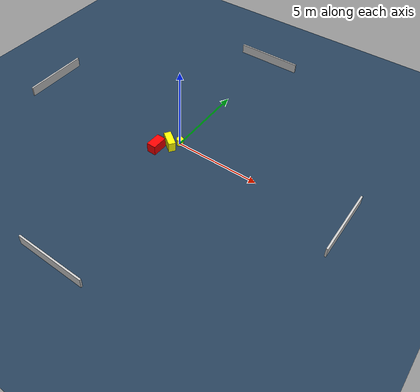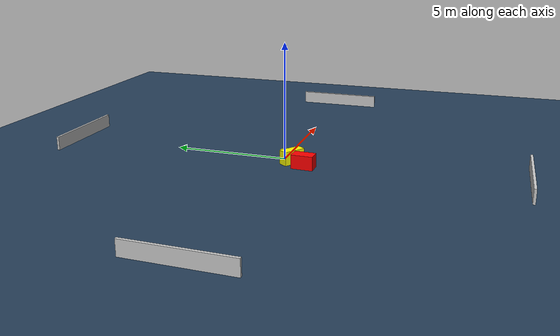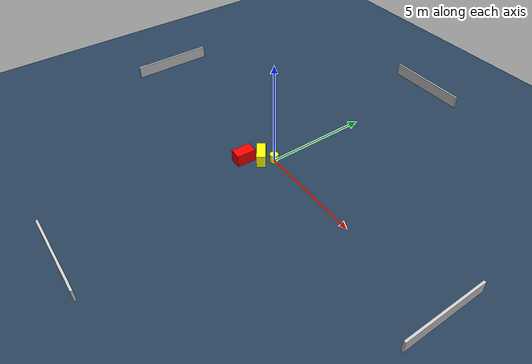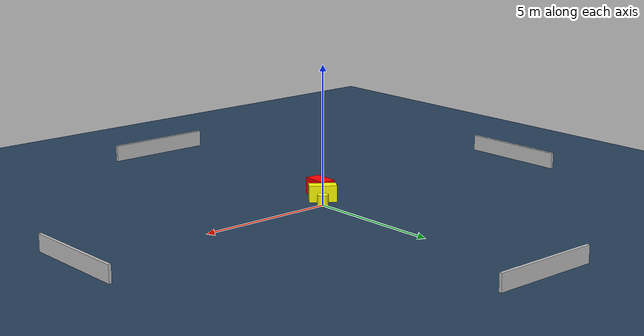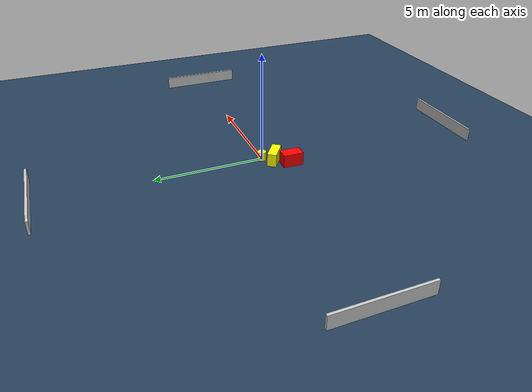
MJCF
<?xml version="1.0" ?>
<mujoco model="generated_environment">
  <option timestep="0.01" integrator="RK4" cone="elliptic"/>
  <default>
    <geom density="1"/>
  </default>
  <asset>
    <texture builtin="gradient" height="3072" name="skybox" rgb1="0.3 0.5 0.7" rgb2="0 0 0" type="skybox" width="512"/>
    <texture builtin="checker" height="300" name="groundplane" rgb1="0.2 0.3 0.4" rgb2="0.1 0.2 0.3" type="2d" width="300"/>
    <material name="groundplane" reflectance="0.2" texrepeat="5 5" texture="groundplane"/>
  </asset>
  <worldbody>
    <light dir="0 0 -1" directional="true" pos="0 0 1.5"/>
    <geom condim="3" friction="0.5 0.005 0.001" material="groundplane" name="floor" pos="0 0 0" size="0 0 0.05" type="plane"/>
    <body name="walls">
      <geom name="wall_1" condim="4" pos="-10.0 0.0 0.3" rgba="0.800000011920929 0.800000011920929 0.800000011920929 1.0" size="0.05 2.0 0.3" type="box"/>
      <geom name="wall_2" condim="4" pos="10.0 0.0 0.3" rgba="0.800000011920929 0.800000011920929 0.800000011920929 1.0" size="0.05 2.0 0.3" type="box"/>
      <geom name="wall_3" condim="4" pos="0.0 -10.0 0.3" rgba="0.800000011920929 0.800000011920929 0.800000011920929 1.0" size="2.0 0.05 0.3" type="box"/>
      <geom name="wall_4" condim="4" pos="0.0 10.0 0.3" rgba="0.800000011920929 0.800000011920929 0.800000011920929 1.0" size="2.0 0.05 0.3" type="box"/>
    </body>
    <body name="robot">
      <joint name="joint_x" type="slide" pos="0 0 0" axis="1 0 0"/>
      <joint name="joint_y" type="slide" pos="0 0 0" axis="0 1 0"/>
      <geom name="robot" type="cylinder" pos="0.0 0.0 0.2" size="0.2 0.2 0.0" mass="5.0" friction="1.0 0.005 0.0001" condim="4" rgba="1.0 1.0 0.0 1.0"/>
    </body>
    <body name="obstacle_1_movable">
      <geom name="obstacle_1_movable" condim="4" pos="-0.38443825915552354 -0.45045568139428316 0.3" euler="0 0 324.1747101374926" friction="0.0 0.005 0.001" rgba="1.0 1.0 0.0 1.0" size="0.4935430196349565 0.2059141973603332 0.3" type="box" mass="0.1"/>
      <joint type="free"/>
    </body>
    <body name="obstacle_2_static">
      <geom name="obstacle_2_static" condim="4" pos="-0.8420774161597584 -1.092549567382227 0.3" euler="0 0 178.47536370019375" friction="0.0 0.005 0.001" rgba="1.0 0.0 0.0 1.0" size="0.2763550156790297 0.4621903885368446 0.3" type="box"/>
    </body>
  </worldbody>
  <actuator>
    <motor name="actuator_x" joint="joint_x" gear="1" ctrlrange="-1 1"/>
    <motor name="actuator_y" joint="joint_y" gear="1" ctrlrange="-1 1"/>
  </actuator>
</mujoco>
